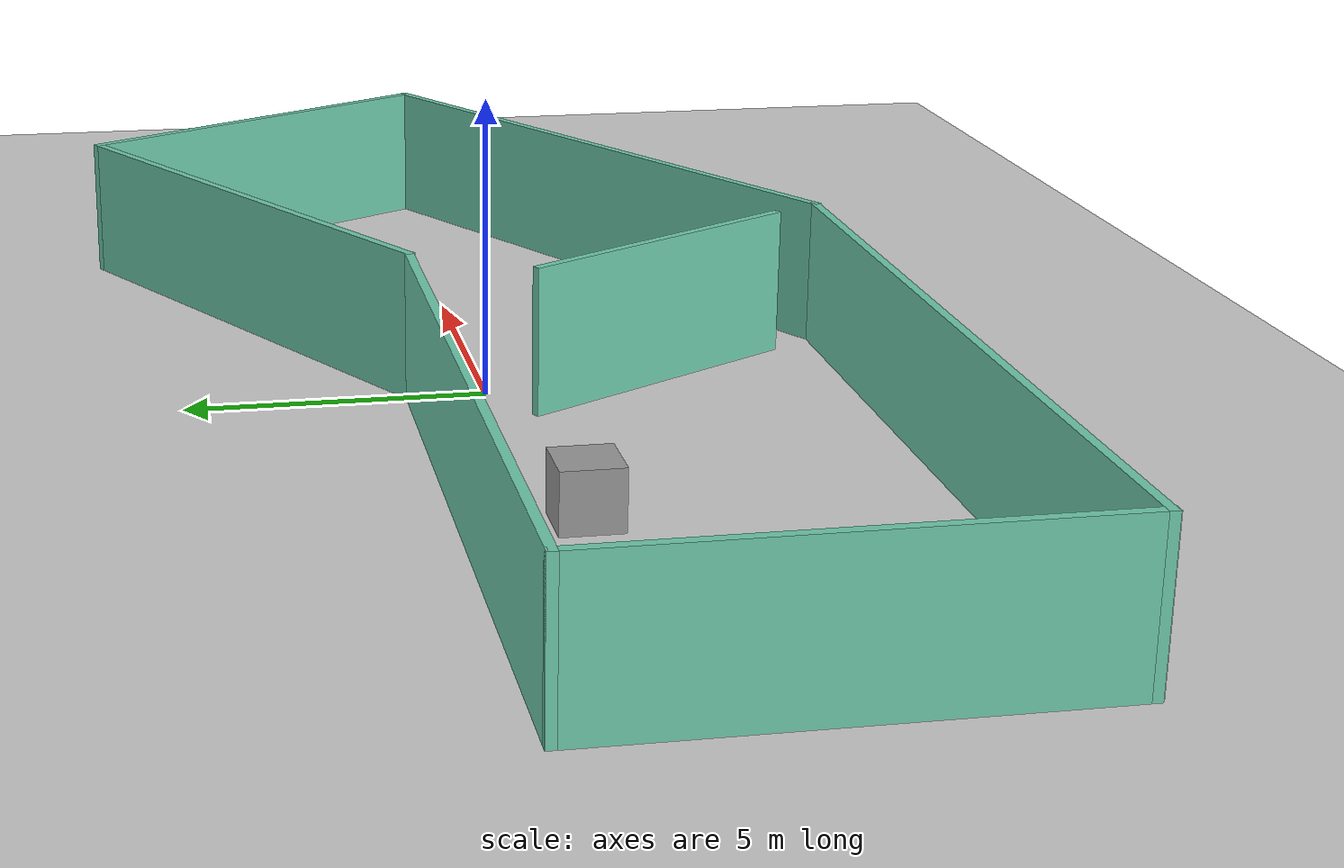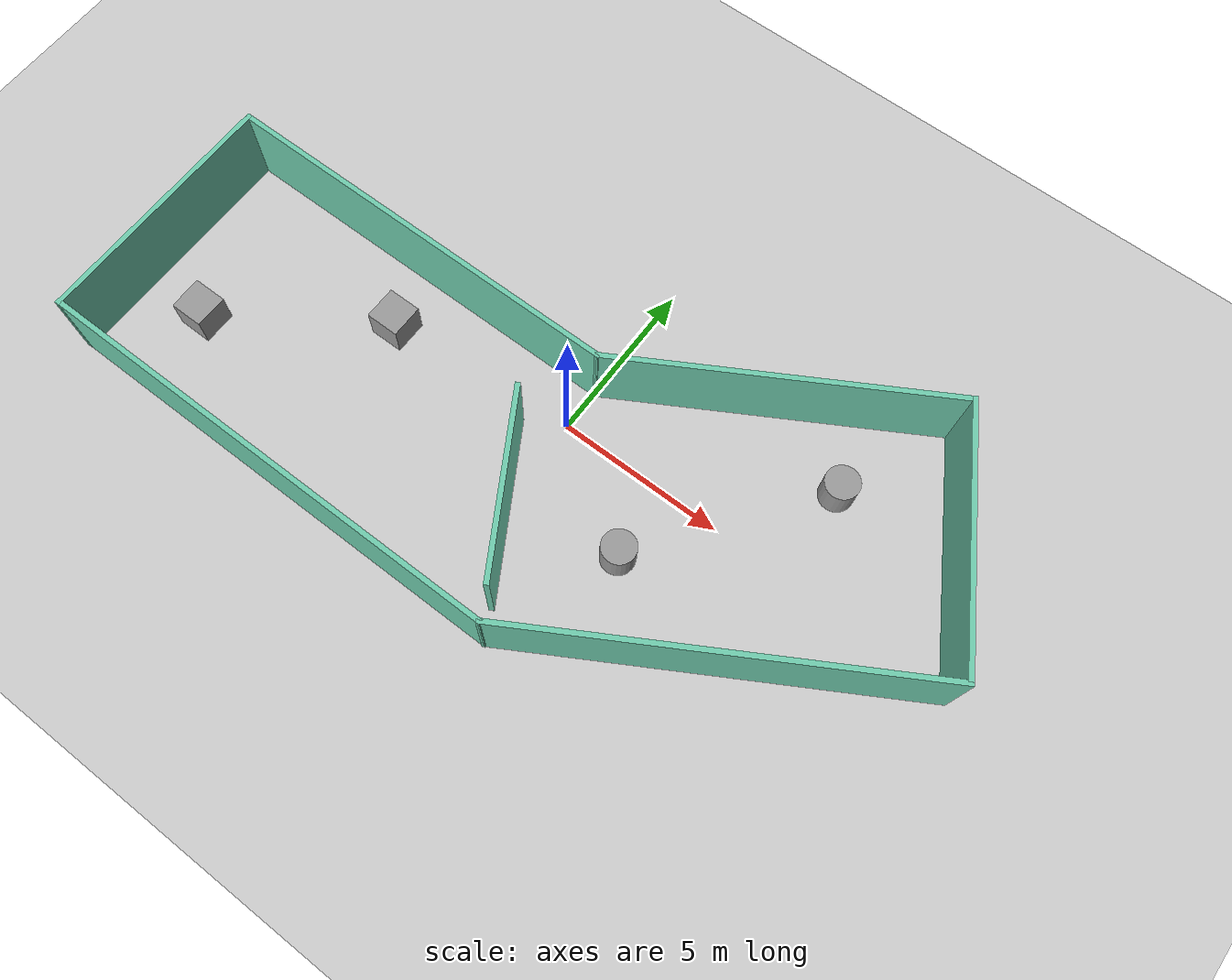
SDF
<sdf version="1.7">
 <world name="default">
  <light name="sun" type="directional">
   <pose>0 0 10 0 -0 0</pose>
   <diffuse>0.8 0.8 0.8 1</diffuse>
   <specular>0.2 0.2 0.2 1</specular>
   <attenuation>
    <range>1000</range>
    <constant>0.9</constant>
    <linear>0.01</linear>
    <quadratic>0.001</quadratic>
   </attenuation>
   <direction>-0.5 0.1 -0.9</direction>
   <spot><inner_angle>0</inner_angle><outer_angle>0</outer_angle><falloff>0</falloff></spot>
  </light>
  <model name="ground_plane">
   <static>1</static>
   <link name="link">
    <collision name="collision">
     <geometry><plane><normal>0 0 1</normal><size>100 100</size></plane></geometry>
     <surface>
      <contact><collide_bitmask>65535</collide_bitmask></contact>
      <friction><ode><mu>100</mu><mu2>50</mu2></ode></friction>
     </surface>
    </collision>
    <visual name="visual">
     <cast_shadows>0</cast_shadows>
     <geometry><plane><normal>0 0 1</normal><size>100 100</size></plane></geometry>
     <material>
      <script><uri>file://media/materials/scripts/gazebo.material</uri><name>Gazebo/Grey</name></script>
     </material>
    </visual>
   </link>
  </model>
  <gravity>0 0 -9.8</gravity>
  <magnetic_field>6e-06 2.3e-05 -4.2e-05</magnetic_field>
  <atmosphere type="adiabatic"/>
  <physics type="ode">
   <max_step_size>0.001</max_step_size>
   <real_time_factor>1</real_time_factor>
   <real_time_update_rate>1000</real_time_update_rate>
  </physics>
  <scene><ambient>0.4 0.4 0.4 1</ambient><background>0.7 0.7 0.7 1</background><shadows>1</shadows></scene>
  <audio><device>default</device></audio>
  <spherical_coordinates>
   <surface_model>EARTH_WGS84</surface_model>
   <latitude_deg>0</latitude_deg>
   <longitude_deg>0</longitude_deg>
   <elevation>0</elevation>
   <heading_deg>0</heading_deg>
  </spherical_coordinates>
  <model name="Wall">
   <link name="Wall_0">
    <pose>-12.3199 -2.4675 0 0 -0 1.5708</pose>
    <visual name="Wall_0_Visual">
     <pose>0 0 1.25 0 -0 0</pose>
     <geometry><box><size>7.61 0.15 2.5</size></box></geometry>
     <material>
      <script><uri>file://media/materials/scripts/gazebo.material</uri><name>Gazebo/Grey</name></script>
      <ambient>0.435294 0.796078 0.67451 1</ambient>
      <shader type="pixel"/>
     </material>
     <meta><layer>0</layer></meta>
    </visual>
    <collision name="Wall_0_Collision">
     <pose>0 0 1.25 0 -0 0</pose>
     <geometry><box><size>7.61 0.15 2.5</size></box></geometry>
     <surface>
      <friction>
       <ode><mu>1</mu><mu2>1</mu2><fdir1>0 0 0</fdir1><slip1>0</slip1><slip2>0</slip2></ode>
       <torsional>
        <coefficient>1</coefficient>
        <patch_radius>0</patch_radius>
        <surface_radius>0</surface_radius>
        <use_patch_radius>1</use_patch_radius>
        <ode><slip>0</slip></ode>
       </torsional>
      </friction>
      <bounce><restitution_coefficient>0</restitution_coefficient><threshold>1e+06</threshold></bounce>
      <contact>
       <collide_without_contact>0</collide_without_contact>
       <collide_without_contact_bitmask>1</collide_without_contact_bitmask>
       <collide_bitmask>1</collide_bitmask>
       <ode>
        <soft_cfm>0</soft_cfm>
        <soft_erp>0.2</soft_erp>
        <kp>1e+13</kp>
        <kd>1</kd>
        <max_vel>0.01</max_vel>
        <min_depth>0</min_depth>
       </ode>
       <bullet>
        <split_impulse>1</split_impulse>
        <split_impulse_penetration_threshold>-0.01</split_impulse_penetration_threshold>
        <soft_cfm>0</soft_cfm>
        <soft_erp>0.2</soft_erp>
        <kp>1e+13</kp>
        <kd>1</kd>
       </bullet>
      </contact>
     </surface>
    </collision>
   </link>
   <link name="Wall_15">
    <pose>7.16127 -3.225 0 0 -0 0.523599</pose>
    <visual name="Wall_15_Visual">
     <pose>0 0 1.25 0 -0 0</pose>
     <geometry><box><size>12 0.15 2.5</size></box></geometry>
     <material>
      <script><uri>file://media/materials/scripts/gazebo.material</uri><name>Gazebo/Grey</name></script>
      <ambient>0.435294 0.796078 0.67451 1</ambient>
      <shader type="pixel"/>
     </material>
     <meta><layer>0</layer></meta>
    </visual>
    <collision name="Wall_15_Collision">
     <pose>0 0 1.25 0 -0 0</pose>
     <geometry><box><size>12 0.15 2.5</size></box></geometry>
     <surface>
      <friction>
       <ode><mu>1</mu><mu2>1</mu2><fdir1>0 0 0</fdir1><slip1>0</slip1><slip2>0</slip2></ode>
       <torsional>
        <coefficient>1</coefficient>
        <patch_radius>0</patch_radius>
        <surface_radius>0</surface_radius>
        <use_patch_radius>1</use_patch_radius>
        <ode><slip>0</slip></ode>
       </torsional>
      </friction>
      <bounce><restitution_coefficient>0</restitution_coefficient><threshold>1e+06</threshold></bounce>
      <contact>
       <collide_without_contact>0</collide_without_contact>
       <collide_without_contact_bitmask>1</collide_without_contact_bitmask>
       <collide_bitmask>1</collide_bitmask>
       <ode>
        <soft_cfm>0</soft_cfm>
        <soft_erp>0.2</soft_erp>
        <kp>1e+13</kp>
        <kd>1</kd>
        <max_vel>0.01</max_vel>
        <min_depth>0</min_depth>
       </ode>
       <bullet>
        <split_impulse>1</split_impulse>
        <split_impulse_penetration_threshold>-0.01</split_impulse_penetration_threshold>
        <soft_cfm>0</soft_cfm>
        <soft_erp>0.2</soft_erp>
        <kp>1e+13</kp>
        <kd>1</kd>
       </bullet>
      </contact>
     </surface>
    </collision>
   </link>
   <link name="Wall_17">
    <pose>-6.14493 1.2625 0 0 -0 0</pose>
    <visual name="Wall_17_Visual">
     <pose>0 0 1.25 0 -0 0</pose>
     <geometry><box><size>12.5 0.15 2.5</size></box></geometry>
     <material>
      <script><uri>file://media/materials/scripts/gazebo.material</uri><name>Gazebo/Grey</name></script>
      <ambient>0.435294 0.796078 0.67451 1</ambient>
      <shader type="pixel"/>
     </material>
     <meta><layer>0</layer></meta>
    </visual>
    <collision name="Wall_17_Collision">
     <pose>0 0 1.25 0 -0 0</pose>
     <geometry><box><size>12.5 0.15 2.5</size></box></geometry>
     <surface>
      <friction>
       <ode><mu>1</mu><mu2>1</mu2><fdir1>0 0 0</fdir1><slip1>0</slip1><slip2>0</slip2></ode>
       <torsional>
        <coefficient>1</coefficient>
        <patch_radius>0</patch_radius>
        <surface_radius>0</surface_radius>
        <use_patch_radius>1</use_patch_radius>
        <ode><slip>0</slip></ode>
       </torsional>
      </friction>
      <bounce><restitution_coefficient>0</restitution_coefficient><threshold>1e+06</threshold></bounce>
      <contact>
       <collide_without_contact>0</collide_without_contact>
       <collide_without_contact_bitmask>1</collide_without_contact_bitmask>
       <collide_bitmask>1</collide_bitmask>
       <ode>
        <soft_cfm>0</soft_cfm>
        <soft_erp>0.2</soft_erp>
        <kp>1e+13</kp>
        <kd>1</kd>
        <max_vel>0.01</max_vel>
        <min_depth>0</min_depth>
       </ode>
       <bullet>
        <split_impulse>1</split_impulse>
        <split_impulse_penetration_threshold>-0.01</split_impulse_penetration_threshold>
        <soft_cfm>0</soft_cfm>
        <soft_erp>0.2</soft_erp>
        <kp>1e+13</kp>
        <kd>1</kd>
       </bullet>
      </contact>
     </surface>
    </collision>
   </link>
   <link name="Wall_19">
    <pose>4.29525 3.725 0 0 -0 0.523599</pose>
    <visual name="Wall_19_Visual">
     <pose>0 0 1.25 0 -0 0</pose>
     <geometry><box><size>10 0.15 2.5</size></box></geometry>
     <material>
      <script><uri>file://media/materials/scripts/gazebo.material</uri><name>Gazebo/Grey</name></script>
      <ambient>0.435294 0.796078 0.67451 1</ambient>
      <shader type="pixel"/>
     </material>
     <meta><layer>0</layer></meta>
    </visual>
    <collision name="Wall_19_Collision">
     <pose>0 0 1.25 0 -0 0</pose>
     <geometry><box><size>10 0.15 2.5</size></box></geometry>
     <surface>
      <friction>
       <ode><mu>1</mu><mu2>1</mu2><fdir1>0 0 0</fdir1><slip1>0</slip1><slip2>0</slip2></ode>
       <torsional>
        <coefficient>1</coefficient>
        <patch_radius>0</patch_radius>
        <surface_radius>0</surface_radius>
        <use_patch_radius>1</use_patch_radius>
        <ode><slip>0</slip></ode>
       </torsional>
      </friction>
      <bounce><restitution_coefficient>0</restitution_coefficient><threshold>1e+06</threshold></bounce>
      <contact>
       <collide_without_contact>0</collide_without_contact>
       <collide_without_contact_bitmask>1</collide_without_contact_bitmask>
       <collide_bitmask>1</collide_bitmask>
       <ode>
        <soft_cfm>0</soft_cfm>
        <soft_erp>0.2</soft_erp>
        <kp>1e+13</kp>
        <kd>1</kd>
        <max_vel>0.01</max_vel>
        <min_depth>0</min_depth>
       </ode>
       <bullet>
        <split_impulse>1</split_impulse>
        <split_impulse_penetration_threshold>-0.01</split_impulse_penetration_threshold>
        <soft_cfm>0</soft_cfm>
        <soft_erp>0.2</soft_erp>
        <kp>1e+13</kp>
        <kd>1</kd>
       </bullet>
      </contact>
     </surface>
    </collision>
   </link>
   <link name="Wall_21">
    <pose>10.3979 3.00486 0 0 0 -1.0472</pose>
    <visual name="Wall_21_Visual">
     <pose>0 0 1.25 0 -0 0</pose>
     <geometry><box><size>7.5 0.15 2.5</size></box></geometry>
     <material>
      <script><uri>file://media/materials/scripts/gazebo.material</uri><name>Gazebo/Grey</name></script>
      <ambient>0.435294 0.796078 0.67451 1</ambient>
      <shader type="pixel"/>
     </material>
     <meta><layer>0</layer></meta>
    </visual>
    <collision name="Wall_21_Collision">
     <pose>0 0 1.25 0 -0 0</pose>
     <geometry><box><size>7.5 0.15 2.5</size></box></geometry>
     <surface>
      <friction>
       <ode><mu>1</mu><mu2>1</mu2><fdir1>0 0 0</fdir1><slip1>0</slip1><slip2>0</slip2></ode>
       <torsional>
        <coefficient>1</coefficient>
        <patch_radius>0</patch_radius>
        <surface_radius>0</surface_radius>
        <use_patch_radius>1</use_patch_radius>
        <ode><slip>0</slip></ode>
       </torsional>
      </friction>
      <bounce><restitution_coefficient>0</restitution_coefficient><threshold>1e+06</threshold></bounce>
      <contact>
       <collide_without_contact>0</collide_without_contact>
       <collide_without_contact_bitmask>1</collide_without_contact_bitmask>
       <collide_bitmask>1</collide_bitmask>
       <ode>
        <soft_cfm>0</soft_cfm>
        <soft_erp>0.2</soft_erp>
        <kp>1e+13</kp>
        <kd>1</kd>
        <max_vel>0.01</max_vel>
        <min_depth>0</min_depth>
       </ode>
       <bullet>
        <split_impulse>1</split_impulse>
        <split_impulse_penetration_threshold>-0.01</split_impulse_penetration_threshold>
        <soft_cfm>0</soft_cfm>
        <soft_erp>0.2</soft_erp>
        <kp>1e+13</kp>
        <kd>1</kd>
       </bullet>
      </contact>
     </surface>
    </collision>
   </link>
   <link name="Wall_21_clone">
    <pose>0.236141 -3.00247 0 0 0 -1.0472</pose>
    <visual name="Wall_21_Visual">
     <pose>0 0 1.25 0 -0 0</pose>
     <geometry><box><size>5.5 0.15 2.5</size></box></geometry>
     <material>
      <script><uri>file://media/materials/scripts/gazebo.material</uri><name>Gazebo/Grey</name></script>
      <ambient>0.435294 0.796078 0.67451 1</ambient>
      <shader type="pixel"/>
     </material>
     <meta><layer>0</layer></meta>
    </visual>
    <collision name="Wall_21_Collision">
     <pose>0 0 1.25 0 -0 0</pose>
     <geometry><box><size>7.5 0.15 2.5</size></box></geometry>
     <surface>
      <friction>
       <ode><mu>1</mu><mu2>1</mu2><fdir1>0 0 0</fdir1><slip1>0</slip1><slip2>0</slip2></ode>
       <torsional>
        <coefficient>1</coefficient>
        <patch_radius>0</patch_radius>
        <surface_radius>0</surface_radius>
        <use_patch_radius>1</use_patch_radius>
        <ode><slip>0</slip></ode>
       </torsional>
      </friction>
      <bounce><restitution_coefficient>0</restitution_coefficient><threshold>1e+06</threshold></bounce>
      <contact>
       <collide_without_contact>0</collide_without_contact>
       <collide_without_contact_bitmask>1</collide_without_contact_bitmask>
       <collide_bitmask>1</collide_bitmask>
       <ode>
        <soft_cfm>0</soft_cfm>
        <soft_erp>0.2</soft_erp>
        <kp>1e+13</kp>
        <kd>1</kd>
        <max_vel>0.01</max_vel>
        <min_depth>0</min_depth>
       </ode>
       <bullet>
        <split_impulse>1</split_impulse>
        <split_impulse_penetration_threshold>-0.01</split_impulse_penetration_threshold>
        <soft_cfm>0</soft_cfm>
        <soft_erp>0.2</soft_erp>
        <kp>1e+13</kp>
        <kd>1</kd>
       </bullet>
      </contact>
     </surface>
    </collision>
   </link>
   <link name="Wall_6">
    <pose>-5.14493 -6.1875 0 0 -0 0</pose>
    <visual name="Wall_6_Visual">
     <pose>0 0 1.25 0 -0 0</pose>
     <geometry><box><size>14.5 0.15 2.5</size></box></geometry>
     <material>
      <script><uri>file://media/materials/scripts/gazebo.material</uri><name>Gazebo/Grey</name></script>
      <ambient>0.435294 0.796078 0.67451 1</ambient>
      <shader type="pixel"/>
     </material>
     <meta><layer>0</layer></meta>
    </visual>
    <collision name="Wall_6_Collision">
     <pose>0 0 1.25 0 -0 0</pose>
     <geometry><box><size>14.5 0.15 2.5</size></box></geometry>
     <surface>
      <friction>
       <ode><mu>1</mu><mu2>1</mu2><fdir1>0 0 0</fdir1><slip1>0</slip1><slip2>0</slip2></ode>
       <torsional>
        <coefficient>1</coefficient>
        <patch_radius>0</patch_radius>
        <surface_radius>0</surface_radius>
        <use_patch_radius>1</use_patch_radius>
        <ode><slip>0</slip></ode>
       </torsional>
      </friction>
      <bounce><restitution_coefficient>0</restitution_coefficient><threshold>1e+06</threshold></bounce>
      <contact>
       <collide_without_contact>0</collide_without_contact>
       <collide_without_contact_bitmask>1</collide_without_contact_bitmask>
       <collide_bitmask>1</collide_bitmask>
       <ode>
        <soft_cfm>0</soft_cfm>
        <soft_erp>0.2</soft_erp>
        <kp>1e+13</kp>
        <kd>1</kd>
        <max_vel>0.01</max_vel>
        <min_depth>0</min_depth>
       </ode>
       <bullet>
        <split_impulse>1</split_impulse>
        <split_impulse_penetration_threshold>-0.01</split_impulse_penetration_threshold>
        <soft_cfm>0</soft_cfm>
        <soft_erp>0.2</soft_erp>
        <kp>1e+13</kp>
        <kd>1</kd>
       </bullet>
      </contact>
     </surface>
    </collision>
   </link>
   <link name="link_0">
    <inertial>
     <mass>1</mass>
     <inertia><ixx>0.145833</ixx><ixy>0</ixy><ixz>0</ixz><iyy>0.145833</iyy><iyz>0</iyz><izz>0.125</izz></inertia>
    </inertial>
    <pose>7.03275 2.82037 0.5 0 -0 0</pose>
    <visual name="visual">
     <geometry><cylinder><radius>0.5</radius><length>1</length></cylinder></geometry>
     <material>
      <lighting>1</lighting>
      <script><uri>file://media/materials/scripts/gazebo.material</uri><name>Gazebo/Grey</name></script>
      <shader type="pixel"/>
     </material>
    </visual>
    <collision name="collision">
     <geometry><cylinder><radius>0.5</radius><length>1</length></cylinder></geometry>
     <surface>
      <friction>
       <ode><mu>1</mu><mu2>1</mu2><fdir1>0 0 0</fdir1><slip1>0</slip1><slip2>0</slip2></ode>
       <torsional>
        <coefficient>1</coefficient>
        <patch_radius>0</patch_radius>
        <surface_radius>0</surface_radius>
        <use_patch_radius>1</use_patch_radius>
        <ode><slip>0</slip></ode>
       </torsional>
      </friction>
      <bounce><restitution_coefficient>0</restitution_coefficient><threshold>1e+06</threshold></bounce>
      <contact>
       <collide_without_contact>0</collide_without_contact>
       <collide_without_contact_bitmask>1</collide_without_contact_bitmask>
       <collide_bitmask>1</collide_bitmask>
       <ode>
        <soft_cfm>0</soft_cfm>
        <soft_erp>0.2</soft_erp>
        <kp>1e+13</kp>
        <kd>1</kd>
        <max_vel>0.01</max_vel>
        <min_depth>0</min_depth>
       </ode>
       <bullet>
        <split_impulse>1</split_impulse>
        <split_impulse_penetration_threshold>-0.01</split_impulse_penetration_threshold>
        <soft_cfm>0</soft_cfm>
        <soft_erp>0.2</soft_erp>
        <kp>1e+13</kp>
        <kd>1</kd>
       </bullet>
      </contact>
     </surface>
    </collision>
   </link>
   <link name="link_1">
    <inertial>
     <mass>1</mass>
     <inertia><ixx>0.145833</ixx><ixy>0</ixy><ixz>0</ixz><iyy>0.145833</iyy><iyz>0</iyz><izz>0.125</izz></inertia>
    </inertial>
    <pose>3.38085 -2.21114 0.5 0 -0 0</pose>
    <visual name="visual">
     <geometry><cylinder><radius>0.5</radius><length>1</length></cylinder></geometry>
     <material>
      <lighting>1</lighting>
      <script><uri>file://media/materials/scripts/gazebo.material</uri><name>Gazebo/Grey</name></script>
      <shader type="pixel"/>
     </material>
    </visual>
    <collision name="collision">
     <geometry><cylinder><radius>0.5</radius><length>1</length></cylinder></geometry>
     <surface>
      <friction>
       <ode><mu>1</mu><mu2>1</mu2><fdir1>0 0 0</fdir1><slip1>0</slip1><slip2>0</slip2></ode>
       <torsional>
        <coefficient>1</coefficient>
        <patch_radius>0</patch_radius>
        <surface_radius>0</surface_radius>
        <use_patch_radius>1</use_patch_radius>
        <ode><slip>0</slip></ode>
       </torsional>
      </friction>
      <bounce><restitution_coefficient>0</restitution_coefficient><threshold>1e+06</threshold></bounce>
      <contact>
       <collide_without_contact>0</collide_without_contact>
       <collide_without_contact_bitmask>1</collide_without_contact_bitmask>
       <collide_bitmask>1</collide_bitmask>
       <ode>
        <soft_cfm>0</soft_cfm>
        <soft_erp>0.2</soft_erp>
        <kp>1e+13</kp>
        <kd>1</kd>
        <max_vel>0.01</max_vel>
        <min_depth>0</min_depth>
       </ode>
       <bullet>
        <split_impulse>1</split_impulse>
        <split_impulse_penetration_threshold>-0.01</split_impulse_penetration_threshold>
        <soft_cfm>0</soft_cfm>
        <soft_erp>0.2</soft_erp>
        <kp>1e+13</kp>
        <kd>1</kd>
       </bullet>
      </contact>
     </surface>
    </collision>
   </link>
   <link name="link_2">
    <inertial>
     <mass>1</mass>
     <inertia>
      <ixx>0.166667</ixx>
      <ixy>0</ixy>
      <ixz>0</ixz>
      <iyy>0.166667</iyy>
      <iyz>0</iyz>
      <izz>0.166667</izz>
     </inertia>
    </inertial>
    <pose>-10.253 -3.61118 0.5 0 -0 0</pose>
    <visual name="visual">
     <geometry><box><size>1 1 1</size></box></geometry>
     <material>
      <lighting>1</lighting>
      <script><uri>file://media/materials/scripts/gazebo.material</uri><name>Gazebo/Grey</name></script>
      <shader type="pixel"/>
     </material>
    </visual>
    <collision name="collision">
     <geometry><box><size>1 1 1</size></box></geometry>
     <surface>
      <friction>
       <ode><mu>1</mu><mu2>1</mu2><fdir1>0 0 0</fdir1><slip1>0</slip1><slip2>0</slip2></ode>
       <torsional>
        <coefficient>1</coefficient>
        <patch_radius>0</patch_radius>
        <surface_radius>0</surface_radius>
        <use_patch_radius>1</use_patch_radius>
        <ode><slip>0</slip></ode>
       </torsional>
      </friction>
      <bounce><restitution_coefficient>0</restitution_coefficient><threshold>1e+06</threshold></bounce>
      <contact>
       <collide_without_contact>0</collide_without_contact>
       <collide_without_contact_bitmask>1</collide_without_contact_bitmask>
       <collide_bitmask>1</collide_bitmask>
       <ode>
        <soft_cfm>0</soft_cfm>
        <soft_erp>0.2</soft_erp>
        <kp>1e+13</kp>
        <kd>1</kd>
        <max_vel>0.01</max_vel>
        <min_depth>0</min_depth>
       </ode>
       <bullet>
        <split_impulse>1</split_impulse>
        <split_impulse_penetration_threshold>-0.01</split_impulse_penetration_threshold>
        <soft_cfm>0</soft_cfm>
        <soft_erp>0.2</soft_erp>
        <kp>1e+13</kp>
        <kd>1</kd>
       </bullet>
      </contact>
     </surface>
    </collision>
   </link>
   <link name="link_3">
    <inertial>
     <mass>1</mass>
     <inertia>
      <ixx>0.166667</ixx>
      <ixy>0</ixy>
      <ixz>0</ixz>
      <iyy>0.166667</iyy>
      <iyz>0</iyz>
      <izz>0.166667</izz>
     </inertia>
    </inertial>
    <pose>-5.70836 -0.527538 0.5 0 -0 0</pose>
    <visual name="visual">
     <geometry><box><size>1 1 1</size></box></geometry>
     <material>
      <lighting>1</lighting>
      <script><uri>file://media/materials/scripts/gazebo.material</uri><name>Gazebo/Grey</name></script>
      <shader type="pixel"/>
     </material>
    </visual>
    <collision name="collision">
     <geometry><box><size>1 1 1</size></box></geometry>
     <surface>
      <friction>
       <ode><mu>1</mu><mu2>1</mu2><fdir1>0 0 0</fdir1><slip1>0</slip1><slip2>0</slip2></ode>
       <torsional>
        <coefficient>1</coefficient>
        <patch_radius>0</patch_radius>
        <surface_radius>0</surface_radius>
        <use_patch_radius>1</use_patch_radius>
        <ode><slip>0</slip></ode>
       </torsional>
      </friction>
      <bounce><restitution_coefficient>0</restitution_coefficient><threshold>1e+06</threshold></bounce>
      <contact>
       <collide_without_contact>0</collide_without_contact>
       <collide_without_contact_bitmask>1</collide_without_contact_bitmask>
       <collide_bitmask>1</collide_bitmask>
       <ode>
        <soft_cfm>0</soft_cfm>
        <soft_erp>0.2</soft_erp>
        <kp>1e+13</kp>
        <kd>1</kd>
        <max_vel>0.01</max_vel>
        <min_depth>0</min_depth>
       </ode>
       <bullet>
        <split_impulse>1</split_impulse>
        <split_impulse_penetration_threshold>-0.01</split_impulse_penetration_threshold>
        <soft_cfm>0</soft_cfm>
        <soft_erp>0.2</soft_erp>
        <kp>1e+13</kp>
        <kd>1</kd>
       </bullet>
      </contact>
     </surface>
    </collision>
   </link>
   <static>1</static>
  </model>
 </world>
</sdf>
